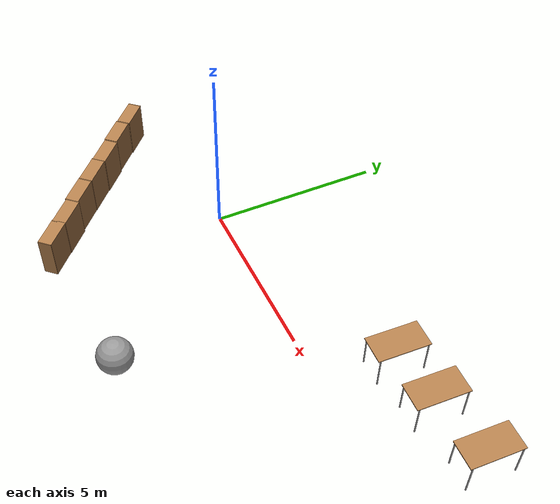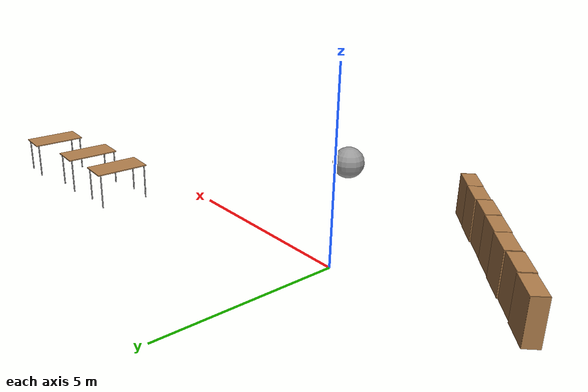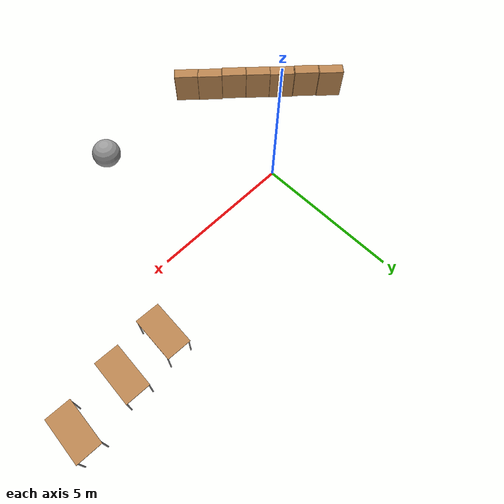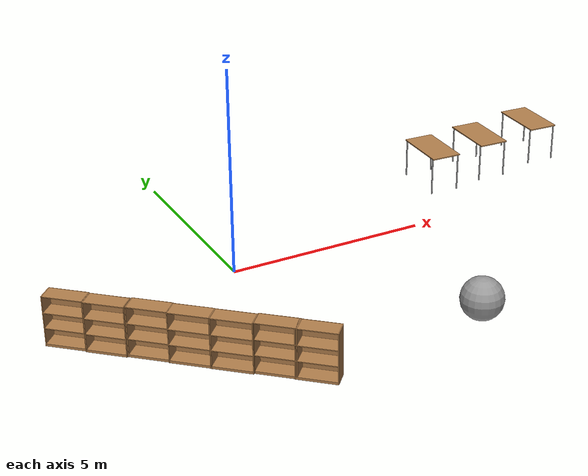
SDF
<sdf version="1.7">
 <world name="world_demo">
  <model name="ground_plane">
   <static>1</static>
   <link name="link">
    <collision name="collision">
     <geometry><plane><normal>0 0 1</normal><size>1 1</size></plane></geometry>
    </collision>
    <inertial>
     <mass>1</mass>
     <inertia><ixx>1</ixx><ixy>0</ixy><ixz>0</ixz><iyy>1</iyy><iyz>0</iyz><izz>1</izz></inertia>
    </inertial>
   </link>
  </model>
  <model name="unit_sphere_0">
   <pose>3.8415 -4.53521 0.5 0 -0 0</pose>
   <link name="link">
    <inertial>
     <mass>1</mass>
     <inertia><ixx>0.1</ixx><ixy>0</ixy><ixz>0</ixz><iyy>0.1</iyy><iyz>0</iyz><izz>0.1</izz></inertia>
    </inertial>
    <collision name="collision"><geometry><sphere><radius>0.5</radius></sphere></geometry></collision>
    <visual name="visual">
     <geometry><sphere><radius>0.5</radius></sphere></geometry>
     <material>
      <script><name>Gazebo/Grey</name><uri>file://media/materials/scripts/gazebo.material</uri></script>
     </material>
    </visual>
   </link>
  </model>
  <model name="bookshelf_clone_clone">
   <static>1</static>
   <link name="link">
    <inertial><mass>1</mass></inertial>
    <collision name="back">
     <pose>0 0.005 0.6 0 -0 0</pose>
     <geometry><box><size>0.9 0.01 1.2</size></box></geometry>
    </collision>
    <visual name="visual1">
     <pose>0 0.005 0.6 0 -0 0</pose>
     <geometry><box><size>0.9 0.01 1.2</size></box></geometry>
     <material>
      <script><uri>file://media/materials/scripts/gazebo.material</uri><name>Gazebo/Wood</name></script>
     </material>
    </visual>
    <collision name="left_side">
     <pose>0.45 -0.195 0.6 0 -0 0</pose>
     <geometry><box><size>0.02 0.4 1.2</size></box></geometry>
    </collision>
    <visual name="visual2">
     <pose>0.45 -0.195 0.6 0 -0 0</pose>
     <geometry><box><size>0.02 0.4 1.2</size></box></geometry>
     <material>
      <script><uri>file://media/materials/scripts/gazebo.material</uri><name>Gazebo/Wood</name></script>
     </material>
    </visual>
    <collision name="right_side">
     <pose>-0.45 -0.195 0.6 0 -0 0</pose>
     <geometry><box><size>0.02 0.4 1.2</size></box></geometry>
    </collision>
    <visual name="visual3">
     <pose>-0.45 -0.195 0.6 0 -0 0</pose>
     <geometry><box><size>0.02 0.4 1.2</size></box></geometry>
     <material>
      <script><uri>file://media/materials/scripts/gazebo.material</uri><name>Gazebo/Wood</name></script>
     </material>
    </visual>
    <collision name="bottom">
     <pose>0 -0.195 0.03 0 -0 0</pose>
     <geometry><box><size>0.88 0.4 0.06</size></box></geometry>
    </collision>
    <visual name="visual4">
     <pose>0 -0.195 0.03 0 -0 0</pose>
     <geometry><box><size>0.88 0.4 0.06</size></box></geometry>
     <material>
      <script><uri>file://media/materials/scripts/gazebo.material</uri><name>Gazebo/Wood</name></script>
     </material>
    </visual>
    <collision name="top">
     <pose>0 -0.195 1.19 0 -0 0</pose>
     <geometry><box><size>0.88 0.4 0.02</size></box></geometry>
    </collision>
    <visual name="visual5">
     <pose>0 -0.195 1.19 0 -0 0</pose>
     <geometry><box><size>0.88 0.4 0.02</size></box></geometry>
     <material>
      <script><uri>file://media/materials/scripts/gazebo.material</uri><name>Gazebo/Wood</name></script>
     </material>
    </visual>
    <collision name="low_shelf">
     <pose>0 -0.195 0.43 0 -0 0</pose>
     <geometry><box><size>0.88 0.4 0.02</size></box></geometry>
    </collision>
    <visual name="visual6">
     <pose>0 -0.195 0.43 0 -0 0</pose>
     <geometry><box><size>0.88 0.4 0.02</size></box></geometry>
     <material>
      <script><uri>file://media/materials/scripts/gazebo.material</uri><name>Gazebo/Wood</name></script>
     </material>
    </visual>
    <collision name="high_shelf">
     <pose>0 -0.195 0.8 0 -0 0</pose>
     <geometry><box><size>0.88 0.4 0.02</size></box></geometry>
    </collision>
    <visual name="visual7">
     <pose>0 -0.195 0.8 0 -0 0</pose>
     <geometry><box><size>0.88 0.4 0.02</size></box></geometry>
     <material>
      <script><uri>file://media/materials/scripts/gazebo.material</uri><name>Gazebo/Wood</name></script>
     </material>
    </visual>
   </link>
   <pose>-4.25834 -1.05608 0 0 0 -0.738287</pose>
  </model>
  <model name="bookshelf_clone_clone_0">
   <static>1</static>
   <link name="link">
    <inertial><mass>1</mass></inertial>
    <collision name="back">
     <pose>0 0.005 0.6 0 -0 0</pose>
     <geometry><box><size>0.9 0.01 1.2</size></box></geometry>
    </collision>
    <visual name="visual1">
     <pose>0 0.005 0.6 0 -0 0</pose>
     <geometry><box><size>0.9 0.01 1.2</size></box></geometry>
     <material>
      <script><uri>file://media/materials/scripts/gazebo.material</uri><name>Gazebo/Wood</name></script>
     </material>
    </visual>
    <collision name="left_side">
     <pose>0.45 -0.195 0.6 0 -0 0</pose>
     <geometry><box><size>0.02 0.4 1.2</size></box></geometry>
    </collision>
    <visual name="visual2">
     <pose>0.45 -0.195 0.6 0 -0 0</pose>
     <geometry><box><size>0.02 0.4 1.2</size></box></geometry>
     <material>
      <script><uri>file://media/materials/scripts/gazebo.material</uri><name>Gazebo/Wood</name></script>
     </material>
    </visual>
    <collision name="right_side">
     <pose>-0.45 -0.195 0.6 0 -0 0</pose>
     <geometry><box><size>0.02 0.4 1.2</size></box></geometry>
    </collision>
    <visual name="visual3">
     <pose>-0.45 -0.195 0.6 0 -0 0</pose>
     <geometry><box><size>0.02 0.4 1.2</size></box></geometry>
     <material>
      <script><uri>file://media/materials/scripts/gazebo.material</uri><name>Gazebo/Wood</name></script>
     </material>
    </visual>
    <collision name="bottom">
     <pose>0 -0.195 0.03 0 -0 0</pose>
     <geometry><box><size>0.88 0.4 0.06</size></box></geometry>
    </collision>
    <visual name="visual4">
     <pose>0 -0.195 0.03 0 -0 0</pose>
     <geometry><box><size>0.88 0.4 0.06</size></box></geometry>
     <material>
      <script><uri>file://media/materials/scripts/gazebo.material</uri><name>Gazebo/Wood</name></script>
     </material>
    </visual>
    <collision name="top">
     <pose>0 -0.195 1.19 0 -0 0</pose>
     <geometry><box><size>0.88 0.4 0.02</size></box></geometry>
    </collision>
    <visual name="visual5">
     <pose>0 -0.195 1.19 0 -0 0</pose>
     <geometry><box><size>0.88 0.4 0.02</size></box></geometry>
     <material>
      <script><uri>file://media/materials/scripts/gazebo.material</uri><name>Gazebo/Wood</name></script>
     </material>
    </visual>
    <collision name="low_shelf">
     <pose>0 -0.195 0.43 0 -0 0</pose>
     <geometry><box><size>0.88 0.4 0.02</size></box></geometry>
    </collision>
    <visual name="visual6">
     <pose>0 -0.195 0.43 0 -0 0</pose>
     <geometry><box><size>0.88 0.4 0.02</size></box></geometry>
     <material>
      <script><uri>file://media/materials/scripts/gazebo.material</uri><name>Gazebo/Wood</name></script>
     </material>
    </visual>
    <collision name="high_shelf">
     <pose>0 -0.195 0.8 0 -0 0</pose>
     <geometry><box><size>0.88 0.4 0.02</size></box></geometry>
    </collision>
    <visual name="visual7">
     <pose>0 -0.195 0.8 0 -0 0</pose>
     <geometry><box><size>0.88 0.4 0.02</size></box></geometry>
     <material>
      <script><uri>file://media/materials/scripts/gazebo.material</uri><name>Gazebo/Wood</name></script>
     </material>
    </visual>
   </link>
   <pose>-3.59154 -1.694 0 0 0 -0.738287</pose>
  </model>
  <model name="bookshelf_clone_clone_1">
   <static>1</static>
   <link name="link">
    <inertial><mass>1</mass></inertial>
    <collision name="back">
     <pose>0 0.005 0.6 0 -0 0</pose>
     <geometry><box><size>0.9 0.01 1.2</size></box></geometry>
    </collision>
    <visual name="visual1">
     <pose>0 0.005 0.6 0 -0 0</pose>
     <geometry><box><size>0.9 0.01 1.2</size></box></geometry>
     <material>
      <script><uri>file://media/materials/scripts/gazebo.material</uri><name>Gazebo/Wood</name></script>
     </material>
    </visual>
    <collision name="left_side">
     <pose>0.45 -0.195 0.6 0 -0 0</pose>
     <geometry><box><size>0.02 0.4 1.2</size></box></geometry>
    </collision>
    <visual name="visual2">
     <pose>0.45 -0.195 0.6 0 -0 0</pose>
     <geometry><box><size>0.02 0.4 1.2</size></box></geometry>
     <material>
      <script><uri>file://media/materials/scripts/gazebo.material</uri><name>Gazebo/Wood</name></script>
     </material>
    </visual>
    <collision name="right_side">
     <pose>-0.45 -0.195 0.6 0 -0 0</pose>
     <geometry><box><size>0.02 0.4 1.2</size></box></geometry>
    </collision>
    <visual name="visual3">
     <pose>-0.45 -0.195 0.6 0 -0 0</pose>
     <geometry><box><size>0.02 0.4 1.2</size></box></geometry>
     <material>
      <script><uri>file://media/materials/scripts/gazebo.material</uri><name>Gazebo/Wood</name></script>
     </material>
    </visual>
    <collision name="bottom">
     <pose>0 -0.195 0.03 0 -0 0</pose>
     <geometry><box><size>0.88 0.4 0.06</size></box></geometry>
    </collision>
    <visual name="visual4">
     <pose>0 -0.195 0.03 0 -0 0</pose>
     <geometry><box><size>0.88 0.4 0.06</size></box></geometry>
     <material>
      <script><uri>file://media/materials/scripts/gazebo.material</uri><name>Gazebo/Wood</name></script>
     </material>
    </visual>
    <collision name="top">
     <pose>0 -0.195 1.19 0 -0 0</pose>
     <geometry><box><size>0.88 0.4 0.02</size></box></geometry>
    </collision>
    <visual name="visual5">
     <pose>0 -0.195 1.19 0 -0 0</pose>
     <geometry><box><size>0.88 0.4 0.02</size></box></geometry>
     <material>
      <script><uri>file://media/materials/scripts/gazebo.material</uri><name>Gazebo/Wood</name></script>
     </material>
    </visual>
    <collision name="low_shelf">
     <pose>0 -0.195 0.43 0 -0 0</pose>
     <geometry><box><size>0.88 0.4 0.02</size></box></geometry>
    </collision>
    <visual name="visual6">
     <pose>0 -0.195 0.43 0 -0 0</pose>
     <geometry><box><size>0.88 0.4 0.02</size></box></geometry>
     <material>
      <script><uri>file://media/materials/scripts/gazebo.material</uri><name>Gazebo/Wood</name></script>
     </material>
    </visual>
    <collision name="high_shelf">
     <pose>0 -0.195 0.8 0 -0 0</pose>
     <geometry><box><size>0.88 0.4 0.02</size></box></geometry>
    </collision>
    <visual name="visual7">
     <pose>0 -0.195 0.8 0 -0 0</pose>
     <geometry><box><size>0.88 0.4 0.02</size></box></geometry>
     <material>
      <script><uri>file://media/materials/scripts/gazebo.material</uri><name>Gazebo/Wood</name></script>
     </material>
    </visual>
   </link>
   <pose>-2.88727 -2.30183 0 0 0 -0.738287</pose>
  </model>
  <model name="bookshelf_clone_clone_2">
   <static>1</static>
   <link name="link">
    <inertial><mass>1</mass></inertial>
    <collision name="back">
     <pose>0 0.005 0.6 0 -0 0</pose>
     <geometry><box><size>0.9 0.01 1.2</size></box></geometry>
    </collision>
    <visual name="visual1">
     <pose>0 0.005 0.6 0 -0 0</pose>
     <geometry><box><size>0.9 0.01 1.2</size></box></geometry>
     <material>
      <script><uri>file://media/materials/scripts/gazebo.material</uri><name>Gazebo/Wood</name></script>
     </material>
    </visual>
    <collision name="left_side">
     <pose>0.45 -0.195 0.6 0 -0 0</pose>
     <geometry><box><size>0.02 0.4 1.2</size></box></geometry>
    </collision>
    <visual name="visual2">
     <pose>0.45 -0.195 0.6 0 -0 0</pose>
     <geometry><box><size>0.02 0.4 1.2</size></box></geometry>
     <material>
      <script><uri>file://media/materials/scripts/gazebo.material</uri><name>Gazebo/Wood</name></script>
     </material>
    </visual>
    <collision name="right_side">
     <pose>-0.45 -0.195 0.6 0 -0 0</pose>
     <geometry><box><size>0.02 0.4 1.2</size></box></geometry>
    </collision>
    <visual name="visual3">
     <pose>-0.45 -0.195 0.6 0 -0 0</pose>
     <geometry><box><size>0.02 0.4 1.2</size></box></geometry>
     <material>
      <script><uri>file://media/materials/scripts/gazebo.material</uri><name>Gazebo/Wood</name></script>
     </material>
    </visual>
    <collision name="bottom">
     <pose>0 -0.195 0.03 0 -0 0</pose>
     <geometry><box><size>0.88 0.4 0.06</size></box></geometry>
    </collision>
    <visual name="visual4">
     <pose>0 -0.195 0.03 0 -0 0</pose>
     <geometry><box><size>0.88 0.4 0.06</size></box></geometry>
     <material>
      <script><uri>file://media/materials/scripts/gazebo.material</uri><name>Gazebo/Wood</name></script>
     </material>
    </visual>
    <collision name="top">
     <pose>0 -0.195 1.19 0 -0 0</pose>
     <geometry><box><size>0.88 0.4 0.02</size></box></geometry>
    </collision>
    <visual name="visual5">
     <pose>0 -0.195 1.19 0 -0 0</pose>
     <geometry><box><size>0.88 0.4 0.02</size></box></geometry>
     <material>
      <script><uri>file://media/materials/scripts/gazebo.material</uri><name>Gazebo/Wood</name></script>
     </material>
    </visual>
    <collision name="low_shelf">
     <pose>0 -0.195 0.43 0 -0 0</pose>
     <geometry><box><size>0.88 0.4 0.02</size></box></geometry>
    </collision>
    <visual name="visual6">
     <pose>0 -0.195 0.43 0 -0 0</pose>
     <geometry><box><size>0.88 0.4 0.02</size></box></geometry>
     <material>
      <script><uri>file://media/materials/scripts/gazebo.material</uri><name>Gazebo/Wood</name></script>
     </material>
    </visual>
    <collision name="high_shelf">
     <pose>0 -0.195 0.8 0 -0 0</pose>
     <geometry><box><size>0.88 0.4 0.02</size></box></geometry>
    </collision>
    <visual name="visual7">
     <pose>0 -0.195 0.8 0 -0 0</pose>
     <geometry><box><size>0.88 0.4 0.02</size></box></geometry>
     <material>
      <script><uri>file://media/materials/scripts/gazebo.material</uri><name>Gazebo/Wood</name></script>
     </material>
    </visual>
   </link>
   <pose>-2.23264 -2.92159 0 0 0 -0.738287</pose>
  </model>
  <model name="bookshelf_clone_clone_3">
   <static>1</static>
   <link name="link">
    <inertial><mass>1</mass></inertial>
    <collision name="back">
     <pose>0 0.005 0.6 0 -0 0</pose>
     <geometry><box><size>0.9 0.01 1.2</size></box></geometry>
    </collision>
    <visual name="visual1">
     <pose>0 0.005 0.6 0 -0 0</pose>
     <geometry><box><size>0.9 0.01 1.2</size></box></geometry>
     <material>
      <script><uri>file://media/materials/scripts/gazebo.material</uri><name>Gazebo/Wood</name></script>
     </material>
    </visual>
    <collision name="left_side">
     <pose>0.45 -0.195 0.6 0 -0 0</pose>
     <geometry><box><size>0.02 0.4 1.2</size></box></geometry>
    </collision>
    <visual name="visual2">
     <pose>0.45 -0.195 0.6 0 -0 0</pose>
     <geometry><box><size>0.02 0.4 1.2</size></box></geometry>
     <material>
      <script><uri>file://media/materials/scripts/gazebo.material</uri><name>Gazebo/Wood</name></script>
     </material>
    </visual>
    <collision name="right_side">
     <pose>-0.45 -0.195 0.6 0 -0 0</pose>
     <geometry><box><size>0.02 0.4 1.2</size></box></geometry>
    </collision>
    <visual name="visual3">
     <pose>-0.45 -0.195 0.6 0 -0 0</pose>
     <geometry><box><size>0.02 0.4 1.2</size></box></geometry>
     <material>
      <script><uri>file://media/materials/scripts/gazebo.material</uri><name>Gazebo/Wood</name></script>
     </material>
    </visual>
    <collision name="bottom">
     <pose>0 -0.195 0.03 0 -0 0</pose>
     <geometry><box><size>0.88 0.4 0.06</size></box></geometry>
    </collision>
    <visual name="visual4">
     <pose>0 -0.195 0.03 0 -0 0</pose>
     <geometry><box><size>0.88 0.4 0.06</size></box></geometry>
     <material>
      <script><uri>file://media/materials/scripts/gazebo.material</uri><name>Gazebo/Wood</name></script>
     </material>
    </visual>
    <collision name="top">
     <pose>0 -0.195 1.19 0 -0 0</pose>
     <geometry><box><size>0.88 0.4 0.02</size></box></geometry>
    </collision>
    <visual name="visual5">
     <pose>0 -0.195 1.19 0 -0 0</pose>
     <geometry><box><size>0.88 0.4 0.02</size></box></geometry>
     <material>
      <script><uri>file://media/materials/scripts/gazebo.material</uri><name>Gazebo/Wood</name></script>
     </material>
    </visual>
    <collision name="low_shelf">
     <pose>0 -0.195 0.43 0 -0 0</pose>
     <geometry><box><size>0.88 0.4 0.02</size></box></geometry>
    </collision>
    <visual name="visual6">
     <pose>0 -0.195 0.43 0 -0 0</pose>
     <geometry><box><size>0.88 0.4 0.02</size></box></geometry>
     <material>
      <script><uri>file://media/materials/scripts/gazebo.material</uri><name>Gazebo/Wood</name></script>
     </material>
    </visual>
    <collision name="high_shelf">
     <pose>0 -0.195 0.8 0 -0 0</pose>
     <geometry><box><size>0.88 0.4 0.02</size></box></geometry>
    </collision>
    <visual name="visual7">
     <pose>0 -0.195 0.8 0 -0 0</pose>
     <geometry><box><size>0.88 0.4 0.02</size></box></geometry>
     <material>
      <script><uri>file://media/materials/scripts/gazebo.material</uri><name>Gazebo/Wood</name></script>
     </material>
    </visual>
   </link>
   <pose>-1.56197 -3.54351 0 0 0 -0.738287</pose>
  </model>
  <model name="bookshelf_clone_clone_4">
   <static>1</static>
   <link name="link">
    <inertial><mass>1</mass></inertial>
    <collision name="back">
     <pose>0 0.005 0.6 0 -0 0</pose>
     <geometry><box><size>0.9 0.01 1.2</size></box></geometry>
    </collision>
    <visual name="visual1">
     <pose>0 0.005 0.6 0 -0 0</pose>
     <geometry><box><size>0.9 0.01 1.2</size></box></geometry>
     <material>
      <script><uri>file://media/materials/scripts/gazebo.material</uri><name>Gazebo/Wood</name></script>
     </material>
    </visual>
    <collision name="left_side">
     <pose>0.45 -0.195 0.6 0 -0 0</pose>
     <geometry><box><size>0.02 0.4 1.2</size></box></geometry>
    </collision>
    <visual name="visual2">
     <pose>0.45 -0.195 0.6 0 -0 0</pose>
     <geometry><box><size>0.02 0.4 1.2</size></box></geometry>
     <material>
      <script><uri>file://media/materials/scripts/gazebo.material</uri><name>Gazebo/Wood</name></script>
     </material>
    </visual>
    <collision name="right_side">
     <pose>-0.45 -0.195 0.6 0 -0 0</pose>
     <geometry><box><size>0.02 0.4 1.2</size></box></geometry>
    </collision>
    <visual name="visual3">
     <pose>-0.45 -0.195 0.6 0 -0 0</pose>
     <geometry><box><size>0.02 0.4 1.2</size></box></geometry>
     <material>
      <script><uri>file://media/materials/scripts/gazebo.material</uri><name>Gazebo/Wood</name></script>
     </material>
    </visual>
    <collision name="bottom">
     <pose>0 -0.195 0.03 0 -0 0</pose>
     <geometry><box><size>0.88 0.4 0.06</size></box></geometry>
    </collision>
    <visual name="visual4">
     <pose>0 -0.195 0.03 0 -0 0</pose>
     <geometry><box><size>0.88 0.4 0.06</size></box></geometry>
     <material>
      <script><uri>file://media/materials/scripts/gazebo.material</uri><name>Gazebo/Wood</name></script>
     </material>
    </visual>
    <collision name="top">
     <pose>0 -0.195 1.19 0 -0 0</pose>
     <geometry><box><size>0.88 0.4 0.02</size></box></geometry>
    </collision>
    <visual name="visual5">
     <pose>0 -0.195 1.19 0 -0 0</pose>
     <geometry><box><size>0.88 0.4 0.02</size></box></geometry>
     <material>
      <script><uri>file://media/materials/scripts/gazebo.material</uri><name>Gazebo/Wood</name></script>
     </material>
    </visual>
    <collision name="low_shelf">
     <pose>0 -0.195 0.43 0 -0 0</pose>
     <geometry><box><size>0.88 0.4 0.02</size></box></geometry>
    </collision>
    <visual name="visual6">
     <pose>0 -0.195 0.43 0 -0 0</pose>
     <geometry><box><size>0.88 0.4 0.02</size></box></geometry>
     <material>
      <script><uri>file://media/materials/scripts/gazebo.material</uri><name>Gazebo/Wood</name></script>
     </material>
    </visual>
    <collision name="high_shelf">
     <pose>0 -0.195 0.8 0 -0 0</pose>
     <geometry><box><size>0.88 0.4 0.02</size></box></geometry>
    </collision>
    <visual name="visual7">
     <pose>0 -0.195 0.8 0 -0 0</pose>
     <geometry><box><size>0.88 0.4 0.02</size></box></geometry>
     <material>
      <script><uri>file://media/materials/scripts/gazebo.material</uri><name>Gazebo/Wood</name></script>
     </material>
    </visual>
   </link>
   <pose>-0.867324 -4.13287 0 0 0 -0.738287</pose>
  </model>
  <model name="bookshelf_clone_clone_5">
   <static>1</static>
   <link name="link">
    <inertial><mass>1</mass></inertial>
    <collision name="back">
     <pose>0 0.005 0.6 0 -0 0</pose>
     <geometry><box><size>0.9 0.01 1.2</size></box></geometry>
    </collision>
    <visual name="visual1">
     <pose>0 0.005 0.6 0 -0 0</pose>
     <geometry><box><size>0.9 0.01 1.2</size></box></geometry>
     <material>
      <script><uri>file://media/materials/scripts/gazebo.material</uri><name>Gazebo/Wood</name></script>
     </material>
    </visual>
    <collision name="left_side">
     <pose>0.45 -0.195 0.6 0 -0 0</pose>
     <geometry><box><size>0.02 0.4 1.2</size></box></geometry>
    </collision>
    <visual name="visual2">
     <pose>0.45 -0.195 0.6 0 -0 0</pose>
     <geometry><box><size>0.02 0.4 1.2</size></box></geometry>
     <material>
      <script><uri>file://media/materials/scripts/gazebo.material</uri><name>Gazebo/Wood</name></script>
     </material>
    </visual>
    <collision name="right_side">
     <pose>-0.45 -0.195 0.6 0 -0 0</pose>
     <geometry><box><size>0.02 0.4 1.2</size></box></geometry>
    </collision>
    <visual name="visual3">
     <pose>-0.45 -0.195 0.6 0 -0 0</pose>
     <geometry><box><size>0.02 0.4 1.2</size></box></geometry>
     <material>
      <script><uri>file://media/materials/scripts/gazebo.material</uri><name>Gazebo/Wood</name></script>
     </material>
    </visual>
    <collision name="bottom">
     <pose>0 -0.195 0.03 0 -0 0</pose>
     <geometry><box><size>0.88 0.4 0.06</size></box></geometry>
    </collision>
    <visual name="visual4">
     <pose>0 -0.195 0.03 0 -0 0</pose>
     <geometry><box><size>0.88 0.4 0.06</size></box></geometry>
     <material>
      <script><uri>file://media/materials/scripts/gazebo.material</uri><name>Gazebo/Wood</name></script>
     </material>
    </visual>
    <collision name="top">
     <pose>0 -0.195 1.19 0 -0 0</pose>
     <geometry><box><size>0.88 0.4 0.02</size></box></geometry>
    </collision>
    <visual name="visual5">
     <pose>0 -0.195 1.19 0 -0 0</pose>
     <geometry><box><size>0.88 0.4 0.02</size></box></geometry>
     <material>
      <script><uri>file://media/materials/scripts/gazebo.material</uri><name>Gazebo/Wood</name></script>
     </material>
    </visual>
    <collision name="low_shelf">
     <pose>0 -0.195 0.43 0 -0 0</pose>
     <geometry><box><size>0.88 0.4 0.02</size></box></geometry>
    </collision>
    <visual name="visual6">
     <pose>0 -0.195 0.43 0 -0 0</pose>
     <geometry><box><size>0.88 0.4 0.02</size></box></geometry>
     <material>
      <script><uri>file://media/materials/scripts/gazebo.material</uri><name>Gazebo/Wood</name></script>
     </material>
    </visual>
    <collision name="high_shelf">
     <pose>0 -0.195 0.8 0 -0 0</pose>
     <geometry><box><size>0.88 0.4 0.02</size></box></geometry>
    </collision>
    <visual name="visual7">
     <pose>0 -0.195 0.8 0 -0 0</pose>
     <geometry><box><size>0.88 0.4 0.02</size></box></geometry>
     <material>
      <script><uri>file://media/materials/scripts/gazebo.material</uri><name>Gazebo/Wood</name></script>
     </material>
    </visual>
   </link>
   <pose>-0.2372 -4.72254 0 0 0 -0.738287</pose>
  </model>
  <model name="table">
   <static>1</static>
   <link name="link">
    <collision name="surface">
     <pose>0 0 1 0 -0 0</pose>
     <geometry><box><size>1.5 0.8 0.03</size></box></geometry>
     <surface><friction><ode><mu>0.6</mu><mu2>0.6</mu2></ode></friction></surface>
    </collision>
    <visual name="visual1">
     <pose>0 0 1 0 -0 0</pose>
     <geometry><box><size>1.5 0.8 0.03</size></box></geometry>
     <material>
      <script><uri>file://media/materials/scripts/gazebo.material</uri><name>Gazebo/Wood</name></script>
     </material>
    </visual>
    <collision name="front_left_leg">
     <pose>0.68 0.38 0.5 0 -0 0</pose>
     <geometry><cylinder><radius>0.02</radius><length>1</length></cylinder></geometry>
    </collision>
    <visual name="front_left_leg">
     <pose>0.68 0.38 0.5 0 -0 0</pose>
     <geometry><cylinder><radius>0.02</radius><length>1</length></cylinder></geometry>
     <material>
      <script><uri>file://media/materials/scripts/gazebo.material</uri><name>Gazebo/Grey</name></script>
     </material>
    </visual>
    <collision name="front_right_leg">
     <pose>0.68 -0.38 0.5 0 -0 0</pose>
     <geometry><cylinder><radius>0.02</radius><length>1</length></cylinder></geometry>
    </collision>
    <visual name="front_right_leg">
     <pose>0.68 -0.38 0.5 0 -0 0</pose>
     <geometry><cylinder><radius>0.02</radius><length>1</length></cylinder></geometry>
     <material>
      <script><uri>file://media/materials/scripts/gazebo.material</uri><name>Gazebo/Grey</name></script>
     </material>
    </visual>
    <collision name="back_right_leg">
     <pose>-0.68 -0.38 0.5 0 -0 0</pose>
     <geometry><cylinder><radius>0.02</radius><length>1</length></cylinder></geometry>
    </collision>
    <visual name="back_right_leg">
     <pose>-0.68 -0.38 0.5 0 -0 0</pose>
     <geometry><cylinder><radius>0.02</radius><length>1</length></cylinder></geometry>
     <material>
      <script><uri>file://media/materials/scripts/gazebo.material</uri><name>Gazebo/Grey</name></script>
     </material>
    </visual>
    <collision name="back_left_leg">
     <pose>-0.68 0.38 0.5 0 -0 0</pose>
     <geometry><cylinder><radius>0.02</radius><length>1</length></cylinder></geometry>
    </collision>
    <visual name="back_left_leg">
     <pose>-0.68 0.38 0.5 0 -0 0</pose>
     <geometry><cylinder><radius>0.02</radius><length>1</length></cylinder></geometry>
     <material>
      <script><uri>file://media/materials/scripts/gazebo.material</uri><name>Gazebo/Grey</name></script>
     </material>
    </visual>
   </link>
   <pose>10.2083 2.42778 0 0 -0 1.52452</pose>
  </model>
  <model name="table_clone">
   <static>1</static>
   <link name="link">
    <collision name="surface">
     <pose>0 0 1 0 -0 0</pose>
     <geometry><box><size>1.5 0.8 0.03</size></box></geometry>
     <surface><friction><ode><mu>0.6</mu><mu2>0.6</mu2></ode></friction></surface>
    </collision>
    <visual name="visual1">
     <pose>0 0 1 0 -0 0</pose>
     <geometry><box><size>1.5 0.8 0.03</size></box></geometry>
     <material>
      <script><uri>file://media/materials/scripts/gazebo.material</uri><name>Gazebo/Wood</name></script>
     </material>
    </visual>
    <collision name="front_left_leg">
     <pose>0.68 0.38 0.5 0 -0 0</pose>
     <geometry><cylinder><radius>0.02</radius><length>1</length></cylinder></geometry>
    </collision>
    <visual name="front_left_leg">
     <pose>0.68 0.38 0.5 0 -0 0</pose>
     <geometry><cylinder><radius>0.02</radius><length>1</length></cylinder></geometry>
     <material>
      <script><uri>file://media/materials/scripts/gazebo.material</uri><name>Gazebo/Grey</name></script>
     </material>
    </visual>
    <collision name="front_right_leg">
     <pose>0.68 -0.38 0.5 0 -0 0</pose>
     <geometry><cylinder><radius>0.02</radius><length>1</length></cylinder></geometry>
    </collision>
    <visual name="front_right_leg">
     <pose>0.68 -0.38 0.5 0 -0 0</pose>
     <geometry><cylinder><radius>0.02</radius><length>1</length></cylinder></geometry>
     <material>
      <script><uri>file://media/materials/scripts/gazebo.material</uri><name>Gazebo/Grey</name></script>
     </material>
    </visual>
    <collision name="back_right_leg">
     <pose>-0.68 -0.38 0.5 0 -0 0</pose>
     <geometry><cylinder><radius>0.02</radius><length>1</length></cylinder></geometry>
    </collision>
    <visual name="back_right_leg">
     <pose>-0.68 -0.38 0.5 0 -0 0</pose>
     <geometry><cylinder><radius>0.02</radius><length>1</length></cylinder></geometry>
     <material>
      <script><uri>file://media/materials/scripts/gazebo.material</uri><name>Gazebo/Grey</name></script>
     </material>
    </visual>
    <collision name="back_left_leg">
     <pose>-0.68 0.38 0.5 0 -0 0</pose>
     <geometry><cylinder><radius>0.02</radius><length>1</length></cylinder></geometry>
    </collision>
    <visual name="back_left_leg">
     <pose>-0.68 0.38 0.5 0 -0 0</pose>
     <geometry><cylinder><radius>0.02</radius><length>1</length></cylinder></geometry>
     <material>
      <script><uri>file://media/materials/scripts/gazebo.material</uri><name>Gazebo/Grey</name></script>
     </material>
    </visual>
   </link>
   <pose>8.37 2.15684 0 0 -0 1.52452</pose>
  </model>
  <model name="table_clone_0">
   <static>1</static>
   <link name="link">
    <collision name="surface">
     <pose>0 0 1 0 -0 0</pose>
     <geometry><box><size>1.5 0.8 0.03</size></box></geometry>
     <surface><friction><ode><mu>0.6</mu><mu2>0.6</mu2></ode></friction></surface>
    </collision>
    <visual name="visual1">
     <pose>0 0 1 0 -0 0</pose>
     <geometry><box><size>1.5 0.8 0.03</size></box></geometry>
     <material>
      <script><uri>file://media/materials/scripts/gazebo.material</uri><name>Gazebo/Wood</name></script>
     </material>
    </visual>
    <collision name="front_left_leg">
     <pose>0.68 0.38 0.5 0 -0 0</pose>
     <geometry><cylinder><radius>0.02</radius><length>1</length></cylinder></geometry>
    </collision>
    <visual name="front_left_leg">
     <pose>0.68 0.38 0.5 0 -0 0</pose>
     <geometry><cylinder><radius>0.02</radius><length>1</length></cylinder></geometry>
     <material>
      <script><uri>file://media/materials/scripts/gazebo.material</uri><name>Gazebo/Grey</name></script>
     </material>
    </visual>
    <collision name="front_right_leg">
     <pose>0.68 -0.38 0.5 0 -0 0</pose>
     <geometry><cylinder><radius>0.02</radius><length>1</length></cylinder></geometry>
    </collision>
    <visual name="front_right_leg">
     <pose>0.68 -0.38 0.5 0 -0 0</pose>
     <geometry><cylinder><radius>0.02</radius><length>1</length></cylinder></geometry>
     <material>
      <script><uri>file://media/materials/scripts/gazebo.material</uri><name>Gazebo/Grey</name></script>
     </material>
    </visual>
    <collision name="back_right_leg">
     <pose>-0.68 -0.38 0.5 0 -0 0</pose>
     <geometry><cylinder><radius>0.02</radius><length>1</length></cylinder></geometry>
    </collision>
    <visual name="back_right_leg">
     <pose>-0.68 -0.38 0.5 0 -0 0</pose>
     <geometry><cylinder><radius>0.02</radius><length>1</length></cylinder></geometry>
     <material>
      <script><uri>file://media/materials/scripts/gazebo.material</uri><name>Gazebo/Grey</name></script>
     </material>
    </visual>
    <collision name="back_left_leg">
     <pose>-0.68 0.38 0.5 0 -0 0</pose>
     <geometry><cylinder><radius>0.02</radius><length>1</length></cylinder></geometry>
    </collision>
    <visual name="back_left_leg">
     <pose>-0.68 0.38 0.5 0 -0 0</pose>
     <geometry><cylinder><radius>0.02</radius><length>1</length></cylinder></geometry>
     <material>
      <script><uri>file://media/materials/scripts/gazebo.material</uri><name>Gazebo/Grey</name></script>
     </material>
    </visual>
   </link>
   <pose>6.7699 2.02228 0 0 -0 1.52452</pose>
  </model>
 </world>
</sdf>
